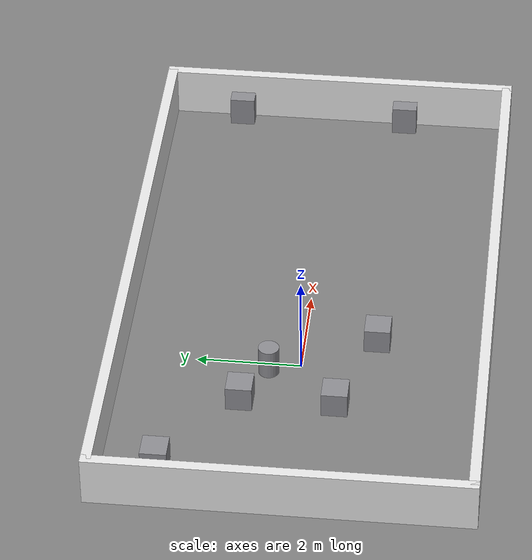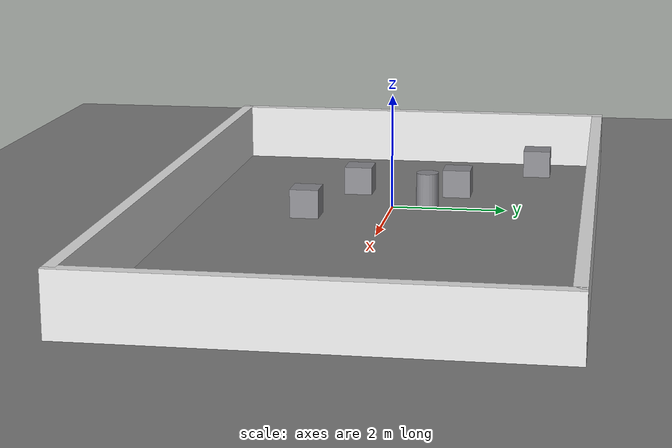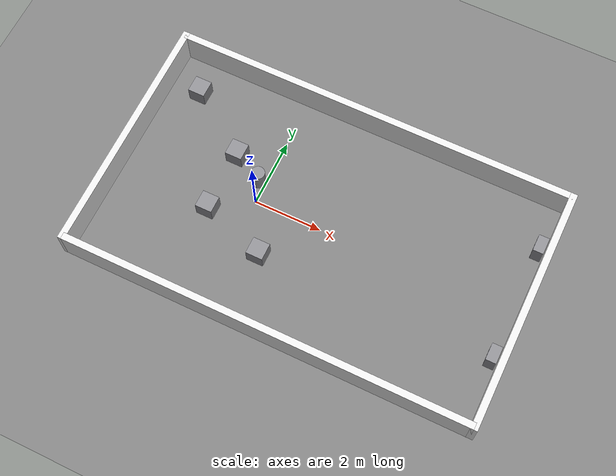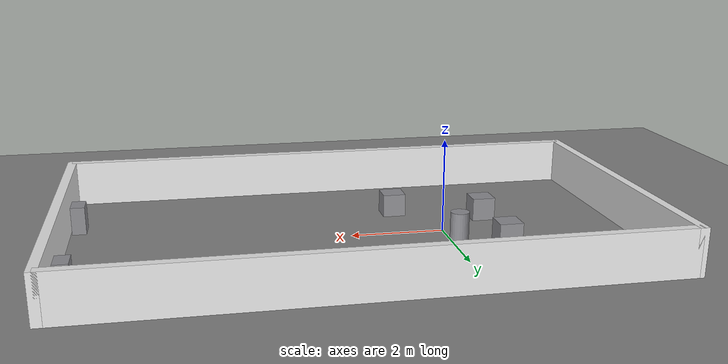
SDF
<?xml version="1.0"?>
<sdf version="1.8">
  <world name="coco_world">

    <physics name="default_physics" type="dart">
      <max_step_size>0.002</max_step_size>
      <real_time_factor>1.0</real_time_factor>
    </physics>
    <gravity>0 0 -9.8</gravity>

    <plugin filename="gz-sim-physics-system" name="gz::sim::systems::Physics"/>
    <plugin filename="gz-sim-user-commands-system" name="gz::sim::systems::UserCommands"/>
    <plugin filename="gz-sim-scene-broadcaster-system" name="gz::sim::systems::SceneBroadcaster"/>
    <plugin filename="gz-sim-sensors-system" name="gz::sim::systems::Sensors">
      <render_engine>ogre2</render_engine>
    </plugin>
    <plugin filename="gz-sim-imu-system" name="gz::sim::systems::Imu"/>

    <light name="sun" type="directional">
      <cast_shadows>true</cast_shadows>
      <pose>0 0 10 0 0 0</pose>
      <diffuse>0.9 0.9 0.9 1</diffuse>
      <specular>0.3 0.3 0.3 1</specular>
      <direction>-0.5 0.1 -0.9</direction>
    </light>

    <light name="fill" type="directional">
      <cast_shadows>false</cast_shadows>
      <pose>0 0 5 0 0 0</pose>
      <diffuse>0.4 0.4 0.4 1</diffuse>
      <direction>0.5 -0.1 -0.9</direction>
    </light>

    <model name="ground_plane">
      <static>true</static>
      <link name="link">
        <collision name="collision">
          <geometry><plane><normal>0 0 1</normal><size>20 20</size></plane></geometry>
          <surface><friction><ode><mu>1.0</mu><mu2>1.0</mu2></ode></friction></surface>
        </collision>
        <visual name="visual">
          <geometry><plane><normal>0 0 1</normal><size>20 20</size></plane></geometry>
          <material>
            <ambient>0.5 0.5 0.5 1</ambient>
            <diffuse>0.5 0.5 0.5 1</diffuse>
          </material>
        </visual>
      </link>
    </model>

    <model name="wall_north">
      <static>true</static><pose>2.0 3.5 0.5 0 0 0</pose>
      <link name="link">
        <collision name="c"><geometry><box><size>12 0.2 1.0</size></box></geometry></collision>
        <visual name="v"><geometry><box><size>12 0.2 1.0</size></box></geometry>
          <material><ambient>0.9 0.9 0.9 1</ambient><diffuse>0.9 0.9 0.9 1</diffuse></material></visual>
      </link>
    </model>

    <model name="wall_south">
      <static>true</static><pose>2.0 -3.5 0.5 0 0 0</pose>
      <link name="link">
        <collision name="c"><geometry><box><size>12 0.2 1.0</size></box></geometry></collision>
        <visual name="v"><geometry><box><size>12 0.2 1.0</size></box></geometry>
          <material><ambient>0.9 0.9 0.9 1</ambient><diffuse>0.9 0.9 0.9 1</diffuse></material></visual>
      </link>
    </model>

    <model name="wall_west">
      <static>true</static><pose>-4.0 0.0 0.5 0 0 0</pose>
      <link name="link">
        <collision name="c"><geometry><box><size>0.2 7.2 1.0</size></box></geometry></collision>
        <visual name="v"><geometry><box><size>0.2 7.2 1.0</size></box></geometry>
          <material><ambient>0.9 0.9 0.9 1</ambient><diffuse>0.9 0.9 0.9 1</diffuse></material></visual>
      </link>
    </model>

    <model name="wall_east">
      <static>true</static><pose>8.0 0.0 0.5 0 0 0</pose>
      <link name="link">
        <collision name="c"><geometry><box><size>0.2 7.2 1.0</size></box></geometry></collision>
        <visual name="v"><geometry><box><size>0.2 7.2 1.0</size></box></geometry>
          <material><ambient>0.9 0.9 0.9 1</ambient><diffuse>0.9 0.9 0.9 1</diffuse></material></visual>
      </link>
    </model>

    <model name="box_obstacle_1">
      <static>true</static><pose>-3.0 2.4 0.25 0 0 0</pose>
      <link name="link">
        <collision name="c"><geometry><box><size>0.5 0.5 0.5</size></box></geometry></collision>
        <visual name="v"><geometry><box><size>0.5 0.5 0.5</size></box></geometry>
          <material><ambient>0.55 0.55 0.57 1</ambient><diffuse>0.55 0.55 0.57 1</diffuse></material></visual>
      </link>
    </model>
    <model name="box_obstacle_2">
      <static>true</static><pose>0.8 -1.4 0.25 0 0 0</pose>
      <link name="link">
        <collision name="c"><geometry><box><size>0.5 0.5 0.5</size></box></geometry></collision>
        <visual name="v"><geometry><box><size>0.5 0.5 0.5</size></box></geometry>
          <material><ambient>0.55 0.55 0.57 1</ambient><diffuse>0.55 0.55 0.57 1</diffuse></material></visual>
      </link>
    </model>
    <model name="cylinder_obstacle">
      <static>true</static><pose>-0.2 0.6 0.3 0 0 0</pose>
      <link name="link">
        <collision name="c"><geometry><cylinder><radius>0.2</radius><length>0.6</length></cylinder></geometry></collision>
        <visual name="v"><geometry><cylinder><radius>0.2</radius><length>0.6</length></cylinder></geometry>
          <material><ambient>0.55 0.55 0.57 1</ambient><diffuse>0.55 0.55 0.57 1</diffuse></material></visual>
      </link>
    </model>

    <model name="gate_cube_north">
      <static>true</static><pose>-1.1 1.05 0.25 0 0 0</pose>
      <link name="link">
        <collision name="c"><geometry><box><size>0.5 0.5 0.5</size></box></geometry></collision>
        <visual name="v"><geometry><box><size>0.5 0.5 0.5</size></box></geometry>
          <material><ambient>0.55 0.55 0.57 1</ambient><diffuse>0.55 0.55 0.57 1</diffuse></material></visual>
      </link>
    </model>
    <model name="gate_cube_south">
      <static>true</static><pose>-1.1 -0.75 0.25 0 0 0</pose>
      <link name="link">
        <collision name="c"><geometry><box><size>0.5 0.5 0.5</size></box></geometry></collision>
        <visual name="v"><geometry><box><size>0.5 0.5 0.5</size></box></geometry>
          <material><ambient>0.55 0.55 0.57 1</ambient><diffuse>0.55 0.55 0.57 1</diffuse></material></visual>
      </link>
    </model>

    <model name="feature_pilaster_north">
      <static>true</static><pose>7.72 2.0 0.3 0 0 0</pose>
      <link name="link">
        <collision name="c"><geometry><box><size>0.3 0.5 0.6</size></box></geometry></collision>
        <visual name="v"><geometry><box><size>0.3 0.5 0.6</size></box></geometry>
          <material><ambient>0.55 0.55 0.57 1</ambient><diffuse>0.55 0.55 0.57 1</diffuse></material></visual>
      </link>
    </model>
    <model name="feature_pilaster_south">
      <static>true</static><pose>7.72 -1.4 0.3 0 0 0</pose>
      <link name="link">
        <collision name="c"><geometry><box><size>0.3 0.5 0.6</size></box></geometry></collision>
        <visual name="v"><geometry><box><size>0.3 0.5 0.6</size></box></geometry>
          <material><ambient>0.55 0.55 0.57 1</ambient><diffuse>0.55 0.55 0.57 1</diffuse></material></visual>
      </link>
    </model>

    <scene>
      <ambient>0.4 0.4 0.4 1</ambient>
      <background>0.53 0.81 0.92 1</background>
      <shadows>true</shadows>
    </scene>

  </world>
</sdf>
